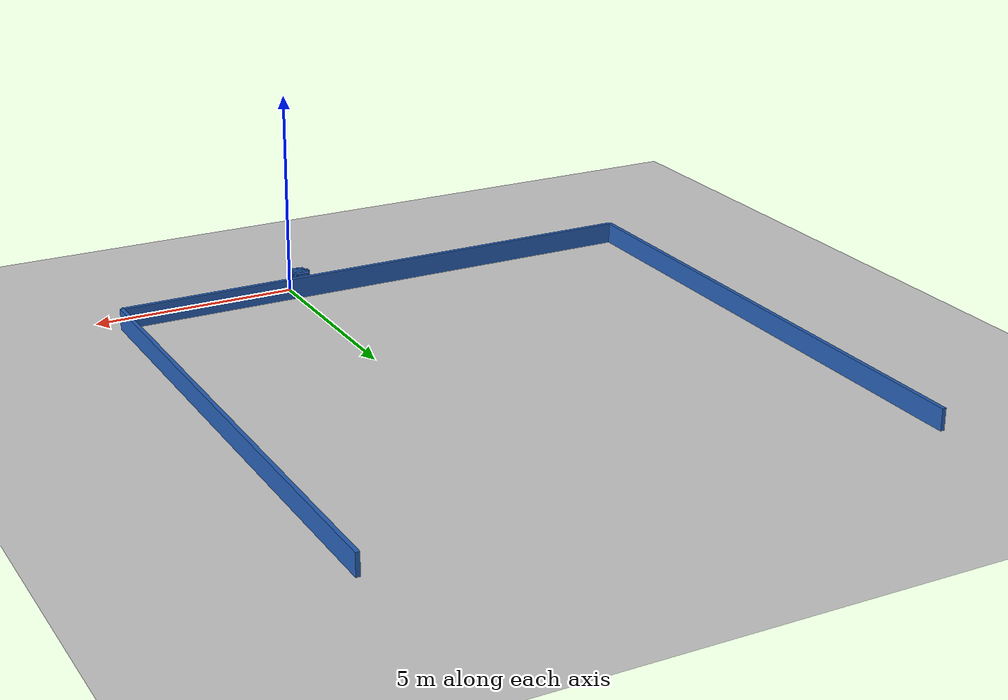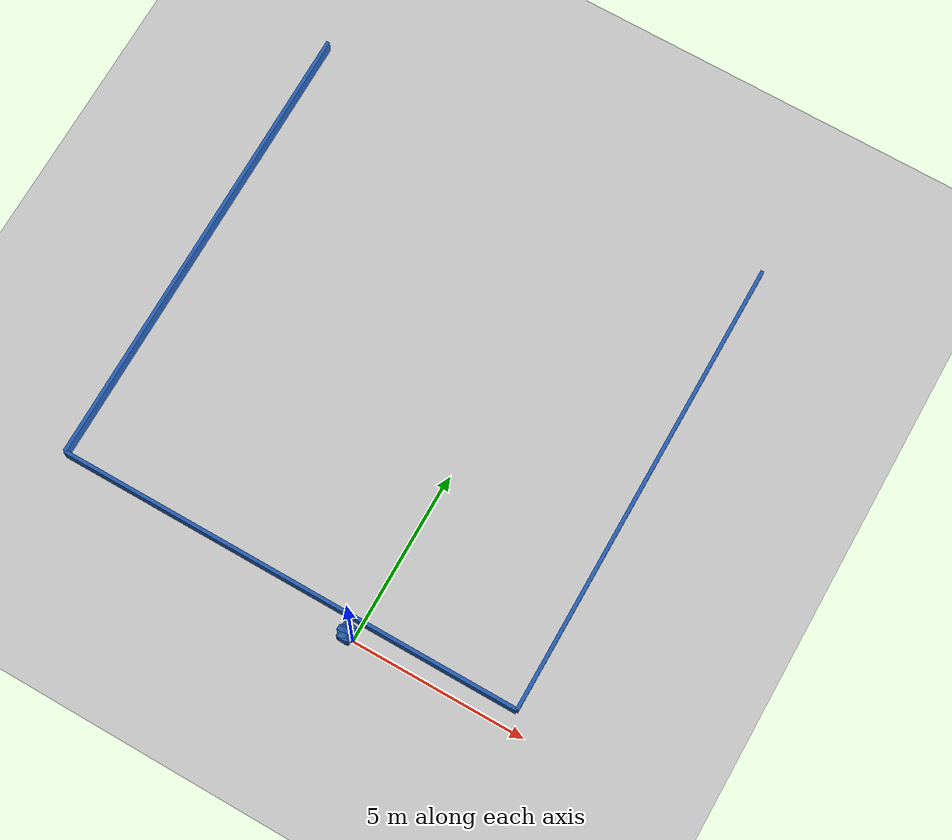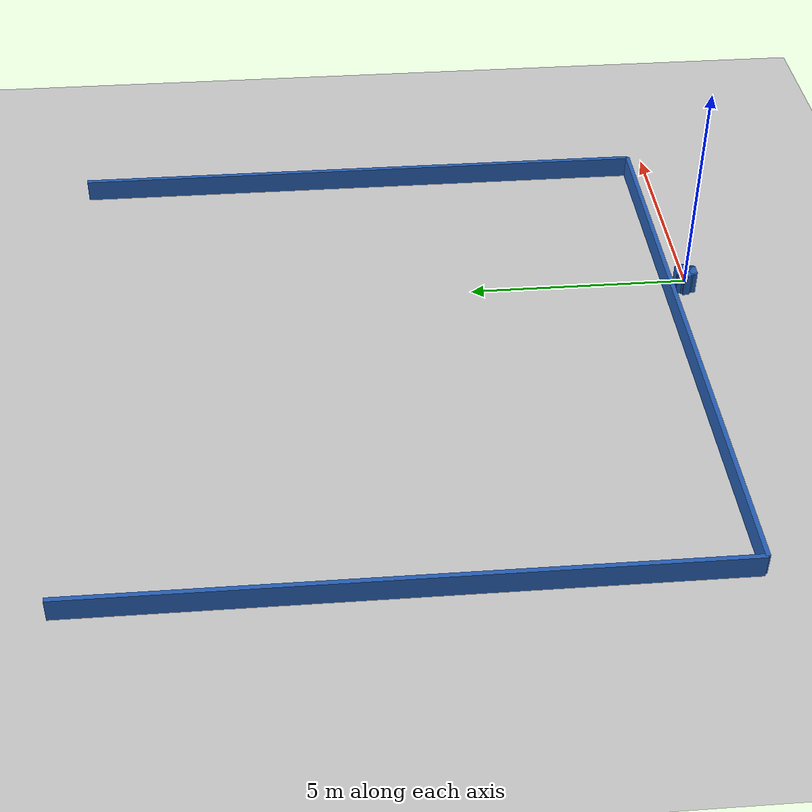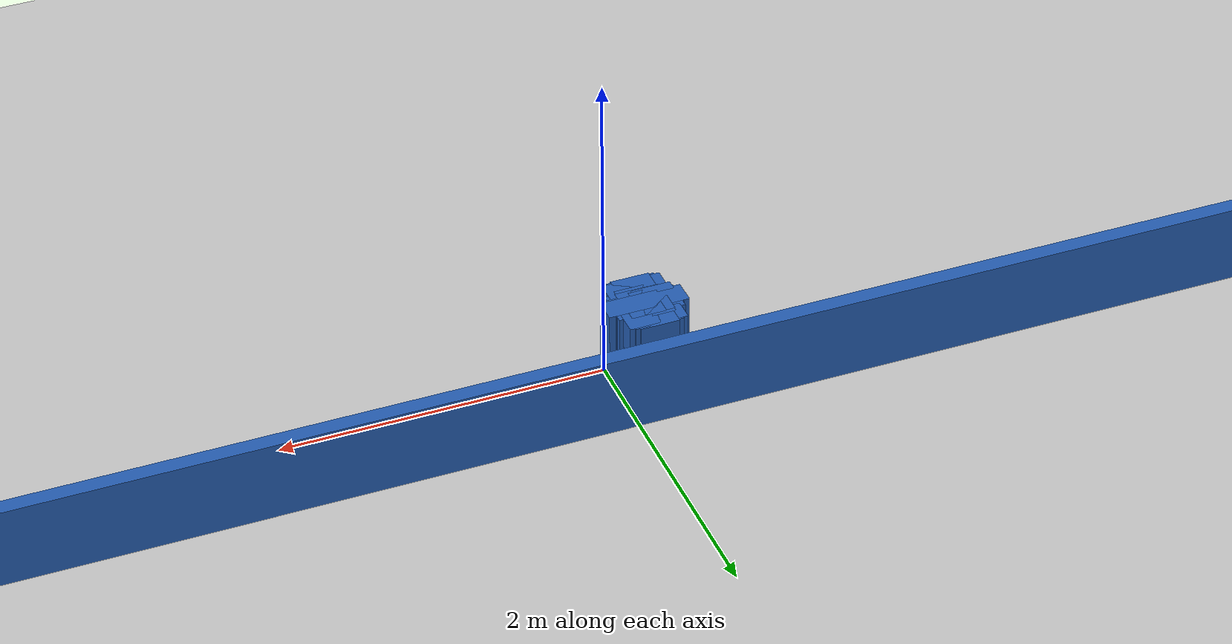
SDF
<?xml version="1.0" ?>
    <sdf version="1.5">
      <world name="default">
        <!-- A global light source -->
        <include>
          <uri>model://sun</uri>
        </include>
        <!-- A ground plane -->
        <include>
          <uri>model://ground_plane</uri>
        </include>

    <model name='libopen_space_final_T2B_90_7'>
      <static>1</static>
      <pose frame=''>-0.225000 0.075000 0.000000 0.000000 0.000000 0.000000</pose>
      <link name='link'>
        <inertial>
          <mass>1</mass>
          <inertia>
            <ixx>0.145833</ixx>
            <ixy>0</ixy>
            <ixz>0</ixz>
            <iyy>0.145833</iyy>
            <iyz>0</iyz>
            <izz>0.125</izz>
          </inertia>
        </inertial>
        <collision name='collision'>
          <geometry>
            <box>
              <size>0.28 0.25 1</size>
            </box>
          </geometry>
          <max_contacts>10</max_contacts>
          <surface>
            <contact>
              <ode/>
            </contact>
            <bounce/>
            <friction>
              <torsional>
                <ode/>
              </torsional>
              <ode/>
            </friction>
          </surface>
        </collision>
        <visual name='visual'>
          <geometry>
            <box>
              <size>0.28 0.25 1</size>
            </box>
          </geometry>
	    <material>
              <ambient>0.152000 0.379000 0.720000 1</ambient>
	      <diffuse>0.152000 0.379000 0.720000 1</diffuse>
          </material>
          <material>
            <script>
              <name>Gazebo/Grey</name>
              <uri>file://media/materials/scripts/gazebo.material</uri>
            </script>
          </material>
        </visual>
        <self_collide>0</self_collide>
        <kinematic>0</kinematic>
        <gravity>1</gravity>
      </link>
      <plugin name='libopen_space_final_T2B_90_7' filename='libopen_space_final_T2B_90_7.so'/>
    </model>

    <model name='libopen_space_final_T2B_77_83'>
      <static>1</static>
      <pose frame=''>-0.225000 0.075000 0.000000 0.000000 0.000000 0.000000</pose>
      <link name='link'>
        <inertial>
          <mass>1</mass>
          <inertia>
            <ixx>0.145833</ixx>
            <ixy>0</ixy>
            <ixz>0</ixz>
            <iyy>0.145833</iyy>
            <iyz>0</iyz>
            <izz>0.125</izz>
          </inertia>
        </inertial>
        <collision name='collision'>
          <geometry>
            <box>
              <size>0.50 0.15 1</size>
            </box>
          </geometry>
          <max_contacts>10</max_contacts>
          <surface>
            <contact>
              <ode/>
            </contact>
            <bounce/>
            <friction>
              <torsional>
                <ode/>
              </torsional>
              <ode/>
            </friction>
          </surface>
        </collision>
        <visual name='visual'>
          <geometry>
            <box>
              <size>0.50 0.15 1</size>
            </box>
          </geometry>
	    <material>
              <ambient>0.152000 0.379000 0.720000 1</ambient>
	      <diffuse>0.152000 0.379000 0.720000 1</diffuse>
          </material>
          <material>
            <script>
              <name>Gazebo/Grey</name>
              <uri>file://media/materials/scripts/gazebo.material</uri>
            </script>
          </material>
        </visual>
        <self_collide>0</self_collide>
        <kinematic>0</kinematic>
        <gravity>1</gravity>
      </link>
      <plugin name='libopen_space_final_T2B_77_83' filename='libopen_space_final_T2B_77_83.so'/>
    </model>

    <model name='libopen_space_final_T2B_120_45'>
      <static>1</static>
      <pose frame=''>-0.225000 0.075000 0.000000 0.000000 0.000000 0.000000</pose>
      <link name='link'>
        <inertial>
          <mass>1</mass>
          <inertia>
            <ixx>0.145833</ixx>
            <ixy>0</ixy>
            <ixz>0</ixz>
            <iyy>0.145833</iyy>
            <iyz>0</iyz>
            <izz>0.125</izz>
          </inertia>
        </inertial>
        <collision name='collision'>
          <geometry>
            <box>
              <size>0.41 0.24 1</size>
            </box>
          </geometry>
          <max_contacts>10</max_contacts>
          <surface>
            <contact>
              <ode/>
            </contact>
            <bounce/>
            <friction>
              <torsional>
                <ode/>
              </torsional>
              <ode/>
            </friction>
          </surface>
        </collision>
        <visual name='visual'>
          <geometry>
            <box>
              <size>0.41 0.24 1</size>
            </box>
          </geometry>
	    <material>
              <ambient>0.152000 0.379000 0.720000 1</ambient>
	      <diffuse>0.152000 0.379000 0.720000 1</diffuse>
          </material>
          <material>
            <script>
              <name>Gazebo/Grey</name>
              <uri>file://media/materials/scripts/gazebo.material</uri>
            </script>
          </material>
        </visual>
        <self_collide>0</self_collide>
        <kinematic>0</kinematic>
        <gravity>1</gravity>
      </link>
      <plugin name='libopen_space_final_T2B_120_45' filename='libopen_space_final_T2B_120_45.so'/>
    </model>

    <model name='libopen_space_final_T2B_118_50'>
      <static>1</static>
      <pose frame=''>-0.225000 0.075000 0.000000 0.000000 0.000000 0.000000</pose>
      <link name='link'>
        <inertial>
          <mass>1</mass>
          <inertia>
            <ixx>0.145833</ixx>
            <ixy>0</ixy>
            <ixz>0</ixz>
            <iyy>0.145833</iyy>
            <iyz>0</iyz>
            <izz>0.125</izz>
          </inertia>
        </inertial>
        <collision name='collision'>
          <geometry>
            <box>
              <size>0.18 0.13 1</size>
            </box>
          </geometry>
          <max_contacts>10</max_contacts>
          <surface>
            <contact>
              <ode/>
            </contact>
            <bounce/>
            <friction>
              <torsional>
                <ode/>
              </torsional>
              <ode/>
            </friction>
          </surface>
        </collision>
        <visual name='visual'>
          <geometry>
            <box>
              <size>0.18 0.13 1</size>
            </box>
          </geometry>
	    <material>
              <ambient>0.152000 0.379000 0.720000 1</ambient>
	      <diffuse>0.152000 0.379000 0.720000 1</diffuse>
          </material>
          <material>
            <script>
              <name>Gazebo/Grey</name>
              <uri>file://media/materials/scripts/gazebo.material</uri>
            </script>
          </material>
        </visual>
        <self_collide>0</self_collide>
        <kinematic>0</kinematic>
        <gravity>1</gravity>
      </link>
      <plugin name='libopen_space_final_T2B_118_50' filename='libopen_space_final_T2B_118_50.so'/>
    </model>

    <model name='libopen_space_final_T2B_83_66'>
      <static>1</static>
      <pose frame=''>-0.225000 0.075000 0.000000 0.000000 0.000000 0.000000</pose>
      <link name='link'>
        <inertial>
          <mass>1</mass>
          <inertia>
            <ixx>0.145833</ixx>
            <ixy>0</ixy>
            <ixz>0</ixz>
            <iyy>0.145833</iyy>
            <iyz>0</iyz>
            <izz>0.125</izz>
          </inertia>
        </inertial>
        <collision name='collision'>
          <geometry>
            <box>
              <size>0.36 0.45 1</size>
            </box>
          </geometry>
          <max_contacts>10</max_contacts>
          <surface>
            <contact>
              <ode/>
            </contact>
            <bounce/>
            <friction>
              <torsional>
                <ode/>
              </torsional>
              <ode/>
            </friction>
          </surface>
        </collision>
        <visual name='visual'>
          <geometry>
            <box>
              <size>0.36 0.45 1</size>
            </box>
          </geometry>
	    <material>
              <ambient>0.152000 0.379000 0.720000 1</ambient>
	      <diffuse>0.152000 0.379000 0.720000 1</diffuse>
          </material>
          <material>
            <script>
              <name>Gazebo/Grey</name>
              <uri>file://media/materials/scripts/gazebo.material</uri>
            </script>
          </material>
        </visual>
        <self_collide>0</self_collide>
        <kinematic>0</kinematic>
        <gravity>1</gravity>
      </link>
      <plugin name='libopen_space_final_T2B_83_66' filename='libopen_space_final_T2B_83_66.so'/>
    </model>

    <model name='libopen_space_final_T2B_94_31'>
      <static>1</static>
      <pose frame=''>-0.225000 0.075000 0.000000 0.000000 0.000000 0.000000</pose>
      <link name='link'>
        <inertial>
          <mass>1</mass>
          <inertia>
            <ixx>0.145833</ixx>
            <ixy>0</ixy>
            <ixz>0</ixz>
            <iyy>0.145833</iyy>
            <iyz>0</iyz>
            <izz>0.125</izz>
          </inertia>
        </inertial>
        <collision name='collision'>
          <geometry>
            <box>
              <size>0.27 0.30 1</size>
            </box>
          </geometry>
          <max_contacts>10</max_contacts>
          <surface>
            <contact>
              <ode/>
            </contact>
            <bounce/>
            <friction>
              <torsional>
                <ode/>
              </torsional>
              <ode/>
            </friction>
          </surface>
        </collision>
        <visual name='visual'>
          <geometry>
            <box>
              <size>0.27 0.30 1</size>
            </box>
          </geometry>
	    <material>
              <ambient>0.152000 0.379000 0.720000 1</ambient>
	      <diffuse>0.152000 0.379000 0.720000 1</diffuse>
          </material>
          <material>
            <script>
              <name>Gazebo/Grey</name>
              <uri>file://media/materials/scripts/gazebo.material</uri>
            </script>
          </material>
        </visual>
        <self_collide>0</self_collide>
        <kinematic>0</kinematic>
        <gravity>1</gravity>
      </link>
      <plugin name='libopen_space_final_T2B_94_31' filename='libopen_space_final_T2B_94_31.so'/>
    </model>

    <model name='libopen_space_final_T2B_140_51'>
      <static>1</static>
      <pose frame=''>-0.225000 0.075000 0.000000 0.000000 0.000000 0.000000</pose>
      <link name='link'>
        <inertial>
          <mass>1</mass>
          <inertia>
            <ixx>0.145833</ixx>
            <ixy>0</ixy>
            <ixz>0</ixz>
            <iyy>0.145833</iyy>
            <iyz>0</iyz>
            <izz>0.125</izz>
          </inertia>
        </inertial>
        <collision name='collision'>
          <geometry>
            <box>
              <size>0.17 0.26 1</size>
            </box>
          </geometry>
          <max_contacts>10</max_contacts>
          <surface>
            <contact>
              <ode/>
            </contact>
            <bounce/>
            <friction>
              <torsional>
                <ode/>
              </torsional>
              <ode/>
            </friction>
          </surface>
        </collision>
        <visual name='visual'>
          <geometry>
            <box>
              <size>0.17 0.26 1</size>
            </box>
          </geometry>
	    <material>
              <ambient>0.152000 0.379000 0.720000 1</ambient>
	      <diffuse>0.152000 0.379000 0.720000 1</diffuse>
          </material>
          <material>
            <script>
              <name>Gazebo/Grey</name>
              <uri>file://media/materials/scripts/gazebo.material</uri>
            </script>
          </material>
        </visual>
        <self_collide>0</self_collide>
        <kinematic>0</kinematic>
        <gravity>1</gravity>
      </link>
      <plugin name='libopen_space_final_T2B_140_51' filename='libopen_space_final_T2B_140_51.so'/>
    </model>

    <model name='libopen_space_final_T2B_103_85'>
      <static>1</static>
      <pose frame=''>-0.225000 0.075000 0.000000 0.000000 0.000000 0.000000</pose>
      <link name='link'>
        <inertial>
          <mass>1</mass>
          <inertia>
            <ixx>0.145833</ixx>
            <ixy>0</ixy>
            <ixz>0</ixz>
            <iyy>0.145833</iyy>
            <iyz>0</iyz>
            <izz>0.125</izz>
          </inertia>
        </inertial>
        <collision name='collision'>
          <geometry>
            <box>
              <size>0.24 0.49 1</size>
            </box>
          </geometry>
          <max_contacts>10</max_contacts>
          <surface>
            <contact>
              <ode/>
            </contact>
            <bounce/>
            <friction>
              <torsional>
                <ode/>
              </torsional>
              <ode/>
            </friction>
          </surface>
        </collision>
        <visual name='visual'>
          <geometry>
            <box>
              <size>0.24 0.49 1</size>
            </box>
          </geometry>
	    <material>
              <ambient>0.152000 0.379000 0.720000 1</ambient>
	      <diffuse>0.152000 0.379000 0.720000 1</diffuse>
          </material>
          <material>
            <script>
              <name>Gazebo/Grey</name>
              <uri>file://media/materials/scripts/gazebo.material</uri>
            </script>
          </material>
        </visual>
        <self_collide>0</self_collide>
        <kinematic>0</kinematic>
        <gravity>1</gravity>
      </link>
      <plugin name='libopen_space_final_T2B_103_85' filename='libopen_space_final_T2B_103_85.so'/>
    </model>

    <model name='libopen_space_final_T2B_57_10'>
      <static>1</static>
      <pose frame=''>-0.225000 0.075000 0.000000 0.000000 0.000000 0.000000</pose>
      <link name='link'>
        <inertial>
          <mass>1</mass>
          <inertia>
            <ixx>0.145833</ixx>
            <ixy>0</ixy>
            <ixz>0</ixz>
            <iyy>0.145833</iyy>
            <iyz>0</iyz>
            <izz>0.125</izz>
          </inertia>
        </inertial>
        <collision name='collision'>
          <geometry>
            <box>
              <size>0.42 0.17 1</size>
            </box>
          </geometry>
          <max_contacts>10</max_contacts>
          <surface>
            <contact>
              <ode/>
            </contact>
            <bounce/>
            <friction>
              <torsional>
                <ode/>
              </torsional>
              <ode/>
            </friction>
          </surface>
        </collision>
        <visual name='visual'>
          <geometry>
            <box>
              <size>0.42 0.17 1</size>
            </box>
          </geometry>
	    <material>
              <ambient>0.152000 0.379000 0.720000 1</ambient>
	      <diffuse>0.152000 0.379000 0.720000 1</diffuse>
          </material>
          <material>
            <script>
              <name>Gazebo/Grey</name>
              <uri>file://media/materials/scripts/gazebo.material</uri>
            </script>
          </material>
        </visual>
        <self_collide>0</self_collide>
        <kinematic>0</kinematic>
        <gravity>1</gravity>
      </link>
      <plugin name='libopen_space_final_T2B_57_10' filename='libopen_space_final_T2B_57_10.so'/>
    </model>

    <model name='libopen_space_final_T2B_57_87'>
      <static>1</static>
      <pose frame=''>-0.225000 0.075000 0.000000 0.000000 0.000000 0.000000</pose>
      <link name='link'>
        <inertial>
          <mass>1</mass>
          <inertia>
            <ixx>0.145833</ixx>
            <ixy>0</ixy>
            <ixz>0</ixz>
            <iyy>0.145833</iyy>
            <iyz>0</iyz>
            <izz>0.125</izz>
          </inertia>
        </inertial>
        <collision name='collision'>
          <geometry>
            <box>
              <size>0.13 0.21 1</size>
            </box>
          </geometry>
          <max_contacts>10</max_contacts>
          <surface>
            <contact>
              <ode/>
            </contact>
            <bounce/>
            <friction>
              <torsional>
                <ode/>
              </torsional>
              <ode/>
            </friction>
          </surface>
        </collision>
        <visual name='visual'>
          <geometry>
            <box>
              <size>0.13 0.21 1</size>
            </box>
          </geometry>
	    <material>
              <ambient>0.152000 0.379000 0.720000 1</ambient>
	      <diffuse>0.152000 0.379000 0.720000 1</diffuse>
          </material>
          <material>
            <script>
              <name>Gazebo/Grey</name>
              <uri>file://media/materials/scripts/gazebo.material</uri>
            </script>
          </material>
        </visual>
        <self_collide>0</self_collide>
        <kinematic>0</kinematic>
        <gravity>1</gravity>
      </link>
      <plugin name='libopen_space_final_T2B_57_87' filename='libopen_space_final_T2B_57_87.so'/>
    </model>

    <model name='libopen_space_final_T2B_83_61'>
      <static>1</static>
      <pose frame=''>-0.225000 0.075000 0.000000 0.000000 0.000000 0.000000</pose>
      <link name='link'>
        <inertial>
          <mass>1</mass>
          <inertia>
            <ixx>0.145833</ixx>
            <ixy>0</ixy>
            <ixz>0</ixz>
            <iyy>0.145833</iyy>
            <iyz>0</iyz>
            <izz>0.125</izz>
          </inertia>
        </inertial>
        <collision name='collision'>
          <geometry>
            <box>
              <size>0.26 0.26 1</size>
            </box>
          </geometry>
          <max_contacts>10</max_contacts>
          <surface>
            <contact>
              <ode/>
            </contact>
            <bounce/>
            <friction>
              <torsional>
                <ode/>
              </torsional>
              <ode/>
            </friction>
          </surface>
        </collision>
        <visual name='visual'>
          <geometry>
            <box>
              <size>0.26 0.26 1</size>
            </box>
          </geometry>
	    <material>
              <ambient>0.152000 0.379000 0.720000 1</ambient>
	      <diffuse>0.152000 0.379000 0.720000 1</diffuse>
          </material>
          <material>
            <script>
              <name>Gazebo/Grey</name>
              <uri>file://media/materials/scripts/gazebo.material</uri>
            </script>
          </material>
        </visual>
        <self_collide>0</self_collide>
        <kinematic>0</kinematic>
        <gravity>1</gravity>
      </link>
      <plugin name='libopen_space_final_T2B_83_61' filename='libopen_space_final_T2B_83_61.so'/>
    </model>

    <model name='libopen_space_final_T2B_71_69'>
      <static>1</static>
      <pose frame=''>-0.225000 0.075000 0.000000 0.000000 0.000000 0.000000</pose>
      <link name='link'>
        <inertial>
          <mass>1</mass>
          <inertia>
            <ixx>0.145833</ixx>
            <ixy>0</ixy>
            <ixz>0</ixz>
            <iyy>0.145833</iyy>
            <iyz>0</iyz>
            <izz>0.125</izz>
          </inertia>
        </inertial>
        <collision name='collision'>
          <geometry>
            <box>
              <size>0.30 0.47 1</size>
            </box>
          </geometry>
          <max_contacts>10</max_contacts>
          <surface>
            <contact>
              <ode/>
            </contact>
            <bounce/>
            <friction>
              <torsional>
                <ode/>
              </torsional>
              <ode/>
            </friction>
          </surface>
        </collision>
        <visual name='visual'>
          <geometry>
            <box>
              <size>0.30 0.47 1</size>
            </box>
          </geometry>
	    <material>
              <ambient>0.152000 0.379000 0.720000 1</ambient>
	      <diffuse>0.152000 0.379000 0.720000 1</diffuse>
          </material>
          <material>
            <script>
              <name>Gazebo/Grey</name>
              <uri>file://media/materials/scripts/gazebo.material</uri>
            </script>
          </material>
        </visual>
        <self_collide>0</self_collide>
        <kinematic>0</kinematic>
        <gravity>1</gravity>
      </link>
      <plugin name='libopen_space_final_T2B_71_69' filename='libopen_space_final_T2B_71_69.so'/>
    </model>

        <model name='bottom_wall'>
          <static>1</static>
          <pose frame=''>-2.25 0.5 0.000000 0.000000 0.000000 1.57079632</pose>
          <link name='link'>
            <inertial>
            <mass>1</mass>
            <inertia>
              <ixx>0.145833</ixx>
              <ixy>0</ixy>
              <ixz>0</ixz>
              <iyy>0.145833</iyy>
              <iyz>0</iyz>
              <izz>0.125</izz>
            </inertia>
            </inertial>
            <collision name='collision'>
            <geometry>
              <box>
              <size>0.1 13.5 1</size>
              </box>
            </geometry>
            <max_contacts>10</max_contacts>
            <surface>
              <contact>
              <ode/>
              </contact>
              <bounce/>
              <friction>
              <torsional>
                <ode/>
              </torsional>
              <ode/>
              </friction>
            </surface>
            </collision>
            <visual name='visual'>
            <geometry>
              <box>
              <size>0.1 13.5 1</size>
              </box>
            </geometry>
            <material>
              <ambient>0.152000 0.379000 0.720000 1</ambient>
            <diffuse>0.152000 0.379000 0.720000 1</diffuse>
            </material>
            <material>
              <script>
              <name>Gazebo/Grey</name>
              <uri>file://media/materials/scripts/gazebo.material</uri>
              </script>
            </material>
            </visual>
            <self_collide>0</self_collide>
            <kinematic>0</kinematic>
            <gravity>1</gravity>
          </link>
        </model>

        <model name='left_wall'>
          <static>1</static>
          <pose frame=''>-9 7.25 0.000000 0.000000 0.000000 0.000000</pose>
          <link name='link'>
            <inertial>
            <mass>1</mass>
            <inertia>
              <ixx>0.145833</ixx>
              <ixy>0</ixy>
              <ixz>0</ixz>
              <iyy>0.145833</iyy>
              <iyz>0</iyz>
              <izz>0.125</izz>
            </inertia>
            </inertial>
            <collision name='collision'>
            <geometry>
              <box>
              <size>0.1 13.5 1</size>
              </box>
            </geometry>
            <max_contacts>10</max_contacts>
            <surface>
              <contact>
              <ode/>
              </contact>
              <bounce/>
              <friction>
              <torsional>
                <ode/>
              </torsional>
              <ode/>
              </friction>
            </surface>
            </collision>
            <visual name='visual'>
            <geometry>
              <box>
              <size>0.1 13.5 1</size>
              </box>
            </geometry>
            <material>
              <ambient>0.152000 0.379000 0.720000 1</ambient>
            <diffuse>0.152000 0.379000 0.720000 1</diffuse>
            </material>
            <material>
              <script>
              <name>Gazebo/Grey</name>
              <uri>file://media/materials/scripts/gazebo.material</uri>
              </script>
            </material>
            </visual>
            <self_collide>0</self_collide>
            <kinematic>0</kinematic>
            <gravity>1</gravity>
          </link>
        </model>

        <model name='right_wall'>
          <static>1</static>
          <pose frame=''>4.5 7.25 0.000000 0.000000 0.000000 0.000000</pose>
          <link name='link'>
            <inertial>
            <mass>1</mass>
            <inertia>
              <ixx>0.145833</ixx>
              <ixy>0</ixy>
              <ixz>0</ixz>
              <iyy>0.145833</iyy>
              <iyz>0</iyz>
              <izz>0.125</izz>
            </inertia>
            </inertial>
            <collision name='collision'>
            <geometry>
              <box>
              <size>0.1 13.5 1</size>
              </box>
            </geometry>
            <max_contacts>10</max_contacts>
            <surface>
              <contact>
              <ode/>
              </contact>
              <bounce/>
              <friction>
              <torsional>
                <ode/>
              </torsional>
              <ode/>
              </friction>
            </surface>
            </collision>
            <visual name='visual'>
            <geometry>
              <box>
              <size>0.1 13.5 1</size>
              </box>
            </geometry>
            <material>
              <ambient>0.152000 0.379000 0.720000 1</ambient>
            <diffuse>0.152000 0.379000 0.720000 1</diffuse>
            </material>
            <material>
              <script>
              <name>Gazebo/Grey</name>
              <uri>file://media/materials/scripts/gazebo.material</uri>
              </script>
            </material>
            </visual>
            <self_collide>0</self_collide>
            <kinematic>0</kinematic>
            <gravity>1</gravity>
          </link>
        </model>

      </world>
    </sdf>"
